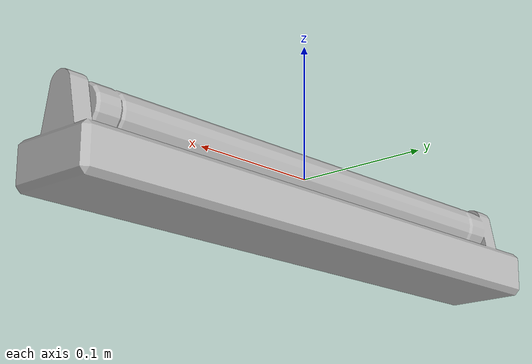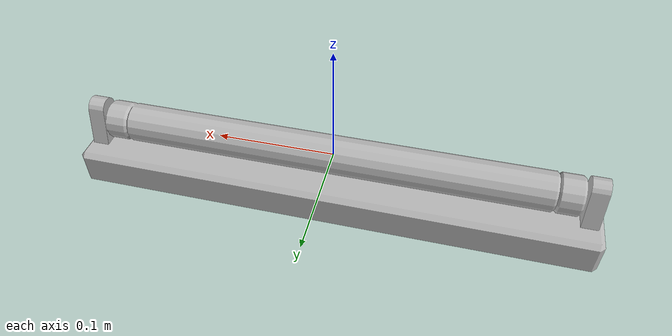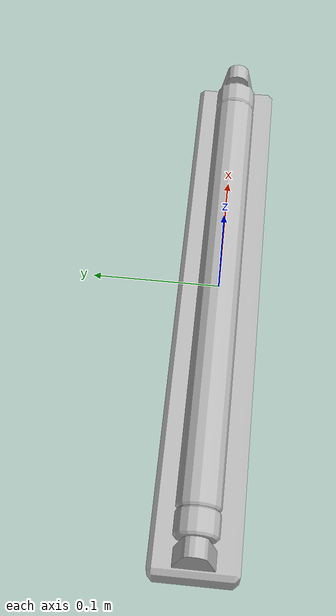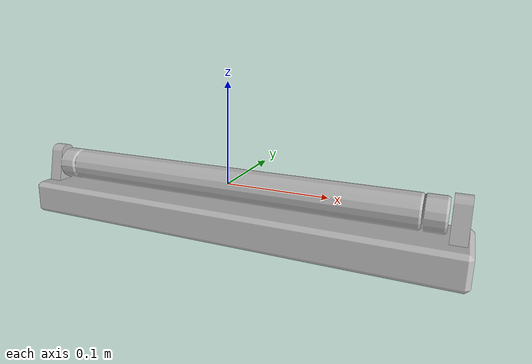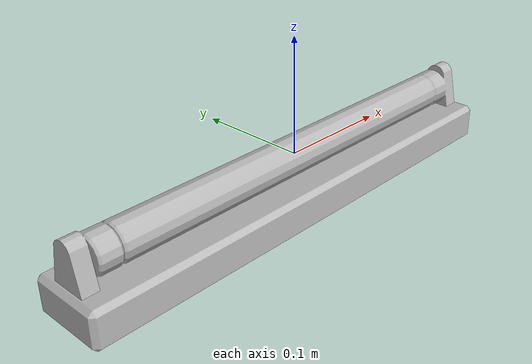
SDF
<?xml version='1.0'?>
<sdf version="1.6">
<model name="fluorescent-strip">
  <pose>0 0 0 0 0 0</pose>
  <static>false</static>
    <link name="link">
      <inertial>
        <mass>0.3</mass>
        <inertia>
          <ixx>0.0026667</ixx>
          <ixy>0.0</ixy>
          <ixz>0.0</ixz>
          <iyy>0.0026667</iyy>
          <iyz>0.0</iyz>
          <izz>0.0026667</izz>
        </inertia>
      </inertial>
      <collision name="collision">
        <geometry>
          <mesh>
            <uri>model://fluorescentstrip/fluorescentstrip.dae</uri>
            <scale>0.2 0.2 0.2</scale>
          </mesh>
        </geometry>
      <max_contacts>10</max_contacts>
        <surface>
			<contact>
              <ode/>
            </contact>
            <bounce/>
           <friction>
              <ode>
              <mu>0.3</mu>
              <mu2>100</mu2>
              </ode>
           </friction>
      </surface>
      </collision>
      <visual name="visual">
        <geometry>
          <mesh>
            <uri>model://fluorescentstrip/fluorescentstrip.dae</uri>
            <scale>0.2 0.2 0.2</scale>
          </mesh>
        </geometry>
      </visual>
      <self_collide>0</self_collide>
        <kinematic>0</kinematic>
        <gravity>1</gravity>
    </link>
  </model>
</sdf>
